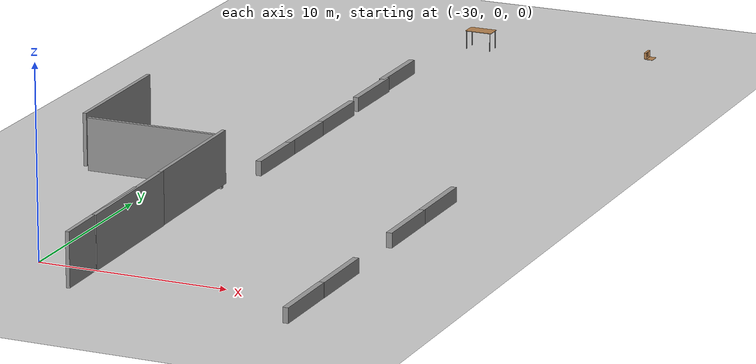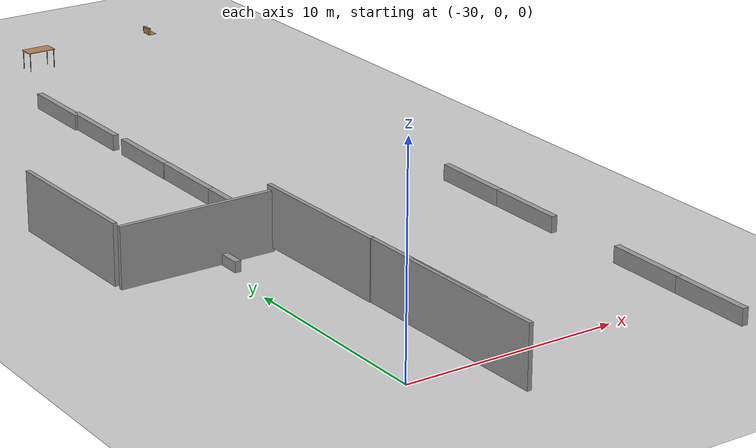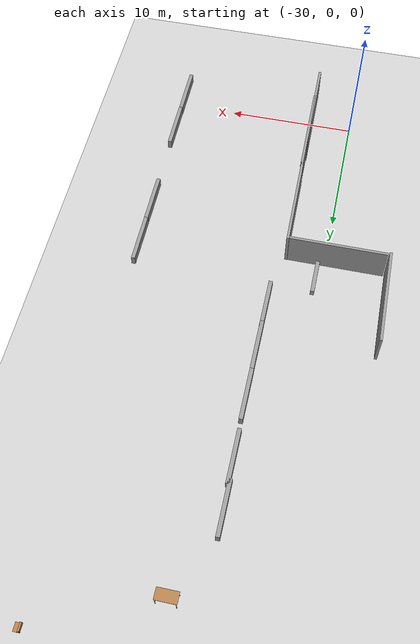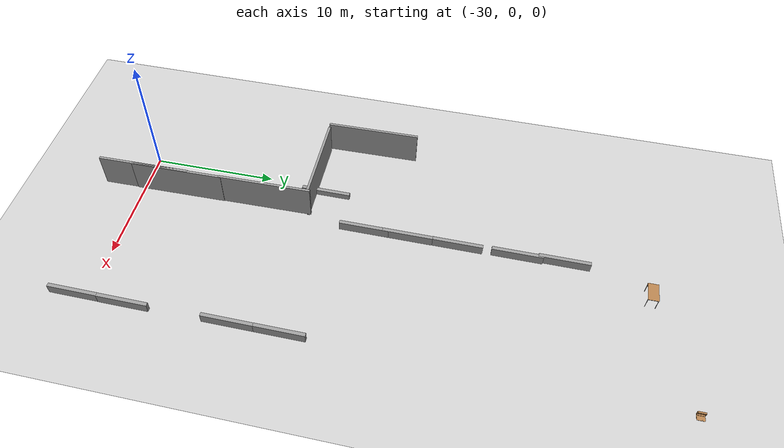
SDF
<sdf version="1.7">
 <world name="default">
  <model name="ground_plane">
   <static>1</static>
   <link name="link">
    <collision name="collision">
     <geometry><plane><normal>0 0 1</normal><size>100 100</size></plane></geometry>
     <surface><friction><ode><mu>100</mu><mu2>50</mu2></ode></friction></surface>
    </collision>
    <visual name="visual">
     <cast_shadows>0</cast_shadows>
     <geometry><plane><normal>0 0 1</normal><size>100 100</size></plane></geometry>
     <material>
      <script><uri>file://media/materials/scripts/gazebo.material</uri><name>Gazebo/Grey</name></script>
     </material>
    </visual>
   </link>
  </model>
  <model name="table">
   <static>1</static>
   <link name="link">
    <collision name="surface">
     <pose>0 0 1 0 -0 0</pose>
     <geometry><box><size>1.5 0.8 0.03</size></box></geometry>
     <surface><friction><ode><mu>0.6</mu><mu2>0.6</mu2></ode></friction></surface>
    </collision>
    <visual name="visual1">
     <pose>0 0 1 0 -0 0</pose>
     <geometry><box><size>1.5 0.8 0.03</size></box></geometry>
     <material>
      <script><uri>file://media/materials/scripts/gazebo.material</uri><name>Gazebo/Wood</name></script>
     </material>
    </visual>
    <collision name="front_left_leg">
     <pose>0.68 0.38 0.5 0 -0 0</pose>
     <geometry><cylinder><radius>0.02</radius><length>1</length></cylinder></geometry>
    </collision>
    <visual name="front_left_leg">
     <pose>0.68 0.38 0.5 0 -0 0</pose>
     <geometry><cylinder><radius>0.02</radius><length>1</length></cylinder></geometry>
     <material>
      <script><uri>file://media/materials/scripts/gazebo.material</uri><name>Gazebo/Grey</name></script>
     </material>
    </visual>
    <collision name="front_right_leg">
     <pose>0.68 -0.38 0.5 0 -0 0</pose>
     <geometry><cylinder><radius>0.02</radius><length>1</length></cylinder></geometry>
    </collision>
    <visual name="front_right_leg">
     <pose>0.68 -0.38 0.5 0 -0 0</pose>
     <geometry><cylinder><radius>0.02</radius><length>1</length></cylinder></geometry>
     <material>
      <script><uri>file://media/materials/scripts/gazebo.material</uri><name>Gazebo/Grey</name></script>
     </material>
    </visual>
    <collision name="back_right_leg">
     <pose>-0.68 -0.38 0.5 0 -0 0</pose>
     <geometry><cylinder><radius>0.02</radius><length>1</length></cylinder></geometry>
    </collision>
    <visual name="back_right_leg">
     <pose>-0.68 -0.38 0.5 0 -0 0</pose>
     <geometry><cylinder><radius>0.02</radius><length>1</length></cylinder></geometry>
     <material>
      <script><uri>file://media/materials/scripts/gazebo.material</uri><name>Gazebo/Grey</name></script>
     </material>
    </visual>
    <collision name="back_left_leg">
     <pose>-0.68 0.38 0.5 0 -0 0</pose>
     <geometry><cylinder><radius>0.02</radius><length>1</length></cylinder></geometry>
    </collision>
    <visual name="back_left_leg">
     <pose>-0.68 0.38 0.5 0 -0 0</pose>
     <geometry><cylinder><radius>0.02</radius><length>1</length></cylinder></geometry>
     <material>
      <script><uri>file://media/materials/scripts/gazebo.material</uri><name>Gazebo/Grey</name></script>
     </material>
    </visual>
   </link>
   <pose>-24.2186 40.8812 0.473539 0 -0 0</pose>
  </model>
  <model name="wooden_case">
   <link name="base">
    <pose>0 0 0.024 0 -0 0</pose>
    <inertial>
     <pose>-0.022184 0 0.171592 0 -0 0</pose>
     <mass>3.96264</mass>
     <inertia>
      <ixx>0.213536</ixx>
      <ixy>0</ixy>
      <ixz>0.000779377</ixz>
      <iyy>0.0708943</iyy>
      <iyz>0</iyz>
      <izz>0.154604</izz>
     </inertia>
    </inertial>
    <collision name="collision_back">
     <pose>-0.053975 0 0.1778 0 -0 0</pose>
     <geometry><box><size>0.01905 0.5461 0.3175</size></box></geometry>
     <surface>
      <contact>
       <poissons_ratio>0.347</poissons_ratio>
       <elastic_modulus>8.8e+09</elastic_modulus>
       <ode><kp>100000</kp><kd>100</kd><max_vel>100</max_vel><min_depth>0.001</min_depth></ode>
      </contact>
      <friction>
       <torsional>
        <coefficient>1</coefficient>
        <use_patch_radius>0</use_patch_radius>
        <surface_radius>0.01</surface_radius>
       </torsional>
      </friction>
     </surface>
    </collision>
    <visual name="visual_back">
     <pose>-0.053975 0 0.1778 0 -0 0</pose>
     <geometry><box><size>0.01905 0.5461 0.3175</size></box></geometry>
     <material>
      <script><uri>file://media/materials/scripts/gazebo.material</uri><name>Gazebo/Wood</name></script>
     </material>
    </visual>
    <collision name="collision_bottom">
     <pose>0 0 0.009525 0 -0 0</pose>
     <geometry><box><size>0.127 0.5842 0.01905</size></box></geometry>
     <surface>
      <contact>
       <poissons_ratio>0.347</poissons_ratio>
       <elastic_modulus>8.8e+09</elastic_modulus>
       <ode><kp>100000</kp><kd>100</kd><max_vel>100</max_vel><min_depth>0.001</min_depth></ode>
      </contact>
      <friction>
       <torsional>
        <coefficient>1</coefficient>
        <use_patch_radius>0</use_patch_radius>
        <surface_radius>0.01</surface_radius>
       </torsional>
      </friction>
     </surface>
    </collision>
    <visual name="visual_bottom">
     <pose>0 0 0.009525 0 -0 0</pose>
     <geometry><box><size>0.127 0.5842 0.01905</size></box></geometry>
     <material>
      <script><uri>file://media/materials/scripts/gazebo.material</uri><name>Gazebo/Wood</name></script>
     </material>
    </visual>
    <collision name="collision_top">
     <pose>0 0 0.346075 0 -0 0</pose>
     <geometry><box><size>0.127 0.5842 0.01905</size></box></geometry>
     <surface>
      <contact>
       <poissons_ratio>0.347</poissons_ratio>
       <elastic_modulus>8.8e+09</elastic_modulus>
       <ode><kp>100000</kp><kd>100</kd><max_vel>100</max_vel><min_depth>0.001</min_depth></ode>
      </contact>
      <friction>
       <torsional>
        <coefficient>1</coefficient>
        <use_patch_radius>0</use_patch_radius>
        <surface_radius>0.01</surface_radius>
       </torsional>
      </friction>
     </surface>
    </collision>
    <visual name="visual_top">
     <pose>0 0 0.346075 0 -0 0</pose>
     <geometry><box><size>0.127 0.5842 0.01905</size></box></geometry>
     <material>
      <script><uri>file://media/materials/scripts/gazebo.material</uri><name>Gazebo/Wood</name></script>
     </material>
    </visual>
    <collision name="collision_left">
     <pose>0 -0.282575 0.1778 0 -0 0</pose>
     <geometry><box><size>0.127 0.01905 0.3175</size></box></geometry>
     <surface>
      <contact>
       <poissons_ratio>0.347</poissons_ratio>
       <elastic_modulus>8.8e+09</elastic_modulus>
       <ode><kp>100000</kp><kd>100</kd><max_vel>100</max_vel><min_depth>0.001</min_depth></ode>
      </contact>
      <friction>
       <torsional>
        <coefficient>1</coefficient>
        <use_patch_radius>0</use_patch_radius>
        <surface_radius>0.01</surface_radius>
       </torsional>
      </friction>
     </surface>
    </collision>
    <visual name="visual_left">
     <pose>0 -0.282575 0.1778 0 -0 0</pose>
     <geometry><box><size>0.127 0.01905 0.3175</size></box></geometry>
     <material>
      <script><uri>file://media/materials/scripts/gazebo.material</uri><name>Gazebo/Wood</name></script>
     </material>
    </visual>
    <collision name="collision_right">
     <pose>0 0.282575 0.1778 0 -0 0</pose>
     <geometry><box><size>0.127 0.01905 0.3175</size></box></geometry>
     <surface>
      <contact>
       <poissons_ratio>0.347</poissons_ratio>
       <elastic_modulus>8.8e+09</elastic_modulus>
       <ode><kp>100000</kp><kd>100</kd><max_vel>100</max_vel><min_depth>0.001</min_depth></ode>
      </contact>
      <friction>
       <torsional>
        <coefficient>1</coefficient>
        <use_patch_radius>0</use_patch_radius>
        <surface_radius>0.01</surface_radius>
       </torsional>
      </friction>
     </surface>
    </collision>
    <visual name="visual_right">
     <pose>0 0.282575 0.1778 0 -0 0</pose>
     <geometry><box><size>0.127 0.01905 0.3175</size></box></geometry>
     <material>
      <script><uri>file://media/materials/scripts/gazebo.material</uri><name>Gazebo/Wood</name></script>
     </material>
    </visual>
    <collision name="collision_block_left">
     <pose>0.0095 -0.2151 -0.012 0 -0 0</pose>
     <geometry><box><size>0.108 0.05 0.024</size></box></geometry>
     <surface>
      <contact>
       <poissons_ratio>0.347</poissons_ratio>
       <elastic_modulus>8.8e+09</elastic_modulus>
       <ode><kp>100000</kp><kd>100</kd><max_vel>100</max_vel><min_depth>0.001</min_depth></ode>
      </contact>
      <friction>
       <torsional>
        <coefficient>1</coefficient>
        <use_patch_radius>0</use_patch_radius>
        <surface_radius>0.01</surface_radius>
       </torsional>
      </friction>
     </surface>
    </collision>
    <visual name="visual_block_left">
     <pose>0.0095 -0.2151 -0.012 0 -0 0</pose>
     <geometry><box><size>0.108 0.05 0.024</size></box></geometry>
     <material>
      <script><uri>file://media/materials/scripts/gazebo.material</uri><name>Gazebo/Wood</name></script>
     </material>
    </visual>
    <collision name="collision_block_right">
     <pose>0.0095 0.2151 -0.012 0 -0 0</pose>
     <geometry><box><size>0.108 0.05 0.024</size></box></geometry>
     <surface>
      <contact>
       <poissons_ratio>0.347</poissons_ratio>
       <elastic_modulus>8.8e+09</elastic_modulus>
       <ode><kp>100000</kp><kd>100</kd><max_vel>100</max_vel><min_depth>0.001</min_depth></ode>
      </contact>
      <friction>
       <torsional>
        <coefficient>1</coefficient>
        <use_patch_radius>0</use_patch_radius>
        <surface_radius>0.01</surface_radius>
       </torsional>
      </friction>
     </surface>
    </collision>
    <visual name="visual_block_right">
     <pose>0.0095 0.2151 -0.012 0 -0 0</pose>
     <geometry><box><size>0.108 0.05 0.024</size></box></geometry>
     <material>
      <script><uri>file://media/materials/scripts/gazebo.material</uri><name>Gazebo/Wood</name></script>
     </material>
    </visual>
   </link>
   <link name="lid">
    <pose>0.243775 0 0.009525 0 -0 0</pose>
    <inertial>
     <mass>1.97874</mass>
     <inertia>
      <ixx>0.0563367</ixx>
      <ixy>0</ixy>
      <ixz>0</ixz>
      <iyy>0.020911</iyy>
      <iyz>0</iyz>
      <izz>0.0771281</izz>
     </inertia>
    </inertial>
    <collision name="collision">
     <geometry><box><size>0.3556 0.5842 0.01905</size></box></geometry>
     <surface>
      <contact>
       <poissons_ratio>0.347</poissons_ratio>
       <elastic_modulus>8.8e+09</elastic_modulus>
       <ode><kp>100000</kp><kd>100</kd><max_vel>100</max_vel><min_depth>0.001</min_depth></ode>
      </contact>
      <friction>
       <torsional>
        <coefficient>1</coefficient>
        <use_patch_radius>0</use_patch_radius>
        <surface_radius>0.01</surface_radius>
       </torsional>
      </friction>
     </surface>
    </collision>
    <visual name="visual">
     <geometry><box><size>0.3556 0.5842 0.01905</size></box></geometry>
     <material>
      <script><uri>file://media/materials/scripts/gazebo.material</uri><name>Gazebo/Wood</name></script>
     </material>
    </visual>
    <visual name="tee_nut_1">
     <pose>0.122 -0.216 0 0 -0 0</pose>
     <geometry><cylinder><radius>0.00635</radius><length>0.0192405</length></cylinder></geometry>
     <material>
      <script><uri>file://media/materials/scripts/gazebo.material</uri><name>Gazebo/Grey</name></script>
     </material>
    </visual>
    <visual name="tee_nut_2">
     <pose>0.122 -0.088 0 0 -0 0</pose>
     <geometry><cylinder><radius>0.00635</radius><length>0.0192405</length></cylinder></geometry>
     <material>
      <script><uri>file://media/materials/scripts/gazebo.material</uri><name>Gazebo/Grey</name></script>
     </material>
    </visual>
    <visual name="tee_nut_3">
     <pose>0.122 0.088 0 0 -0 0</pose>
     <geometry><cylinder><radius>0.00635</radius><length>0.0192405</length></cylinder></geometry>
     <material>
      <script><uri>file://media/materials/scripts/gazebo.material</uri><name>Gazebo/Grey</name></script>
     </material>
    </visual>
    <visual name="tee_nut_4">
     <pose>0.122 0.216 0 0 -0 0</pose>
     <geometry><cylinder><radius>0.00635</radius><length>0.0192405</length></cylinder></geometry>
     <material>
      <script><uri>file://media/materials/scripts/gazebo.material</uri><name>Gazebo/Grey</name></script>
     </material>
    </visual>
   </link>
   <joint name="lid_hinge" type="revolute">
    <pose>-0.1778 0 0.01905 0 -0 0</pose>
    <parent>base</parent>
    <child>lid</child>
    <axis>
     <xyz>0 1 0</xyz>
     <limit><upper>0.523599</upper><lower>-1.5708</lower></limit>
     <dynamics><spring_reference>0</spring_reference><spring_stiffness>0</spring_stiffness></dynamics>
    </axis>
   </joint>
   <pose>-15.8267 44.2683 -0.001057 0 -0.000429 0</pose>
  </model>
  <model name="grey_wall_1_clone_clone">
   <static>1</static>
   <link name="link">
    <pose>0 0 1.4 0 -0 0</pose>
    <collision name="collision"><geometry><box><size>7.5 0.2 2.8</size></box></geometry></collision>
    <visual name="visual">
     <cast_shadows>0</cast_shadows>
     <geometry><box><size>7.5 0.2 2.8</size></box></geometry>
     <material>
      <script>
       <uri>model://grey_wall/materials/scripts</uri>
       <uri>model://grey_wall/materials/textures</uri>
       <name>vrc/grey_wall</name>
      </script>
     </material>
    </visual>
   </link>
   <pose>-26.9144 10.5164 0.19567 0 0 -1.55567</pose>
  </model>
  <model name="grey_wall_1_clone_clone_0">
   <static>1</static>
   <link name="link">
    <pose>0 0 1.4 0 -0 0</pose>
    <collision name="collision"><geometry><box><size>7.5 0.2 2.8</size></box></geometry></collision>
    <visual name="visual">
     <cast_shadows>0</cast_shadows>
     <geometry><box><size>7.5 0.2 2.8</size></box></geometry>
     <material>
      <script>
       <uri>model://grey_wall/materials/scripts</uri>
       <uri>model://grey_wall/materials/textures</uri>
       <name>vrc/grey_wall</name>
      </script>
     </material>
    </visual>
   </link>
   <pose>-26.7681 3.21616 0.19567 0 0 -1.55567</pose>
  </model>
  <model name="grey_wall_1_clone_clone_1">
   <static>1</static>
   <link name="link">
    <pose>0 0 1.4 0 -0 0</pose>
    <collision name="collision"><geometry><box><size>7.5 0.2 2.8</size></box></geometry></collision>
    <visual name="visual">
     <cast_shadows>0</cast_shadows>
     <geometry><box><size>7.5 0.2 2.8</size></box></geometry>
     <material>
      <script>
       <uri>model://grey_wall/materials/scripts</uri>
       <uri>model://grey_wall/materials/textures</uri>
       <name>vrc/grey_wall</name>
      </script>
     </material>
    </visual>
   </link>
   <pose>-26.7715 0.421848 0.19567 0 0 -1.55567</pose>
  </model>
  <model name="grey_wall_0_clone_0_clone">
   <static>1</static>
   <link name="link">
    <pose>0 0 1.4 0 -0 0</pose>
    <collision name="collision"><geometry><box><size>7.5 0.2 2.8</size></box></geometry></collision>
    <visual name="visual">
     <cast_shadows>0</cast_shadows>
     <geometry><box><size>7.5 0.2 2.8</size></box></geometry>
     <material>
      <script>
       <uri>model://grey_wall/materials/scripts</uri>
       <uri>model://grey_wall/materials/textures</uri>
       <name>vrc/grey_wall</name>
      </script>
     </material>
    </visual>
   </link>
   <pose>-30.6989 14.0157 0 0 -0 0</pose>
  </model>
  <model name="grey_wall_1_clone_clone_1_clone">
   <static>1</static>
   <link name="link">
    <pose>0 0 1.4 0 -0 0</pose>
    <collision name="collision"><geometry><box><size>7.5 0.2 2.8</size></box></geometry></collision>
    <visual name="visual">
     <cast_shadows>0</cast_shadows>
     <geometry><box><size>7.5 0.2 2.8</size></box></geometry>
     <material>
      <script>
       <uri>model://grey_wall/materials/scripts</uri>
       <uri>model://grey_wall/materials/textures</uri>
       <name>vrc/grey_wall</name>
      </script>
     </material>
    </visual>
   </link>
   <pose>-34.6805 17.7285 0.19567 0 0 -1.55567</pose>
  </model>
  <model name="conveyor_fill_taller_clone_8">
   <link name="link">
    <inertial>
     <mass>1</mass>
     <inertia>
      <ixx>0.166667</ixx>
      <ixy>0</ixy>
      <ixz>0</ixz>
      <iyy>0.166667</iyy>
      <iyz>0</iyz>
      <izz>0.166667</izz>
     </inertia>
    </inertial>
    <pose>0 0 -0.277043 0 -0 0</pose>
    <visual name="visual">
     <geometry><box><size>0.3 4 1</size></box></geometry>
     <material>
      <script><name>Gazebo/Grey</name><uri>file://media/materials/scripts/gazebo.material</uri></script>
      <shader type="pixel"><normal_map>__default__</normal_map></shader>
      <ambient>0.3 0.3 0.3 1</ambient>
      <diffuse>0.7 0.7 0.7 1</diffuse>
      <specular>0.01 0.01 0.01 1</specular>
      <emissive>0 0 0 1</emissive>
     </material>
    </visual>
    <collision name="collision">
     <geometry><box><size>0.3 4 1</size></box></geometry>
     <surface>
      <friction>
       <ode><mu>1</mu><mu2>1</mu2><fdir1>0 0 0</fdir1><slip1>0</slip1><slip2>0</slip2></ode>
       <torsional>
        <coefficient>1</coefficient>
        <patch_radius>0</patch_radius>
        <surface_radius>0</surface_radius>
        <use_patch_radius>1</use_patch_radius>
        <ode><slip>0</slip></ode>
       </torsional>
      </friction>
      <bounce><restitution_coefficient>0</restitution_coefficient><threshold>1e+06</threshold></bounce>
      <contact>
       <collide_without_contact>0</collide_without_contact>
       <collide_without_contact_bitmask>1</collide_without_contact_bitmask>
       <collide_bitmask>1</collide_bitmask>
       <ode>
        <soft_cfm>0</soft_cfm>
        <soft_erp>0.2</soft_erp>
        <kp>1e+13</kp>
        <kd>1</kd>
        <max_vel>0.01</max_vel>
        <min_depth>0</min_depth>
       </ode>
       <bullet>
        <split_impulse>1</split_impulse>
        <split_impulse_penetration_threshold>-0.01</split_impulse_penetration_threshold>
        <soft_cfm>0</soft_cfm>
        <soft_erp>0.2</soft_erp>
        <kp>1e+13</kp>
        <kd>1</kd>
       </bullet>
      </contact>
     </surface>
    </collision>
   </link>
   <static>0</static>
   <pose>-15.5896 14.8985 0.5 0 0 -0.00195</pose>
  </model>
  <model name="conveyor_fill_taller_clone_9">
   <link name="link">
    <inertial>
     <mass>1</mass>
     <inertia>
      <ixx>0.166667</ixx>
      <ixy>0</ixy>
      <ixz>0</ixz>
      <iyy>0.166667</iyy>
      <iyz>0</iyz>
      <izz>0.166667</izz>
     </inertia>
    </inertial>
    <pose>0 0 -0.277043 0 -0 0</pose>
    <visual name="visual">
     <geometry><box><size>0.3 4 1</size></box></geometry>
     <material>
      <script><name>Gazebo/Grey</name><uri>file://media/materials/scripts/gazebo.material</uri></script>
      <shader type="pixel"><normal_map>__default__</normal_map></shader>
      <ambient>0.3 0.3 0.3 1</ambient>
      <diffuse>0.7 0.7 0.7 1</diffuse>
      <specular>0.01 0.01 0.01 1</specular>
      <emissive>0 0 0 1</emissive>
     </material>
    </visual>
    <collision name="collision">
     <geometry><box><size>0.3 4 1</size></box></geometry>
     <surface>
      <friction>
       <ode><mu>1</mu><mu2>1</mu2><fdir1>0 0 0</fdir1><slip1>0</slip1><slip2>0</slip2></ode>
       <torsional>
        <coefficient>1</coefficient>
        <patch_radius>0</patch_radius>
        <surface_radius>0</surface_radius>
        <use_patch_radius>1</use_patch_radius>
        <ode><slip>0</slip></ode>
       </torsional>
      </friction>
      <bounce><restitution_coefficient>0</restitution_coefficient><threshold>1e+06</threshold></bounce>
      <contact>
       <collide_without_contact>0</collide_without_contact>
       <collide_without_contact_bitmask>1</collide_without_contact_bitmask>
       <collide_bitmask>1</collide_bitmask>
       <ode>
        <soft_cfm>0</soft_cfm>
        <soft_erp>0.2</soft_erp>
        <kp>1e+13</kp>
        <kd>1</kd>
        <max_vel>0.01</max_vel>
        <min_depth>0</min_depth>
       </ode>
       <bullet>
        <split_impulse>1</split_impulse>
        <split_impulse_penetration_threshold>-0.01</split_impulse_penetration_threshold>
        <soft_cfm>0</soft_cfm>
        <soft_erp>0.2</soft_erp>
        <kp>1e+13</kp>
        <kd>1</kd>
       </bullet>
      </contact>
     </surface>
    </collision>
   </link>
   <static>0</static>
   <pose>-15.5919 10.9686 0.5 0 0 -0.00195</pose>
  </model>
  <model name="conveyor_fill_taller_clone_11">
   <link name="link">
    <inertial>
     <mass>1</mass>
     <inertia>
      <ixx>0.166667</ixx>
      <ixy>0</ixy>
      <ixz>0</ixz>
      <iyy>0.166667</iyy>
      <iyz>0</iyz>
      <izz>0.166667</izz>
     </inertia>
    </inertial>
    <pose>0 0 -0.277043 0 -0 0</pose>
    <visual name="visual">
     <geometry><box><size>0.3 4 1</size></box></geometry>
     <material>
      <script><name>Gazebo/Grey</name><uri>file://media/materials/scripts/gazebo.material</uri></script>
      <shader type="pixel"><normal_map>__default__</normal_map></shader>
      <ambient>0.3 0.3 0.3 1</ambient>
      <diffuse>0.7 0.7 0.7 1</diffuse>
      <specular>0.01 0.01 0.01 1</specular>
      <emissive>0 0 0 1</emissive>
     </material>
    </visual>
    <collision name="collision">
     <geometry><box><size>0.3 4 1</size></box></geometry>
     <surface>
      <friction>
       <ode><mu>1</mu><mu2>1</mu2><fdir1>0 0 0</fdir1><slip1>0</slip1><slip2>0</slip2></ode>
       <torsional>
        <coefficient>1</coefficient>
        <patch_radius>0</patch_radius>
        <surface_radius>0</surface_radius>
        <use_patch_radius>1</use_patch_radius>
        <ode><slip>0</slip></ode>
       </torsional>
      </friction>
      <bounce><restitution_coefficient>0</restitution_coefficient><threshold>1e+06</threshold></bounce>
      <contact>
       <collide_without_contact>0</collide_without_contact>
       <collide_without_contact_bitmask>1</collide_without_contact_bitmask>
       <collide_bitmask>1</collide_bitmask>
       <ode>
        <soft_cfm>0</soft_cfm>
        <soft_erp>0.2</soft_erp>
        <kp>1e+13</kp>
        <kd>1</kd>
        <max_vel>0.01</max_vel>
        <min_depth>0</min_depth>
       </ode>
       <bullet>
        <split_impulse>1</split_impulse>
        <split_impulse_penetration_threshold>-0.01</split_impulse_penetration_threshold>
        <soft_cfm>0</soft_cfm>
        <soft_erp>0.2</soft_erp>
        <kp>1e+13</kp>
        <kd>1</kd>
       </bullet>
      </contact>
     </surface>
    </collision>
   </link>
   <static>0</static>
   <pose>-15.5201 2.88334 0.5 0 0 -0.00195</pose>
  </model>
  <model name="conveyor_fill_taller_clone_12">
   <link name="link">
    <inertial>
     <mass>1</mass>
     <inertia>
      <ixx>0.166667</ixx>
      <ixy>0</ixy>
      <ixz>0</ixz>
      <iyy>0.166667</iyy>
      <iyz>0</iyz>
      <izz>0.166667</izz>
     </inertia>
    </inertial>
    <pose>0 0 -0.277043 0 -0 0</pose>
    <visual name="visual">
     <geometry><box><size>0.3 4 1</size></box></geometry>
     <material>
      <script><name>Gazebo/Grey</name><uri>file://media/materials/scripts/gazebo.material</uri></script>
      <shader type="pixel"><normal_map>__default__</normal_map></shader>
      <ambient>0.3 0.3 0.3 1</ambient>
      <diffuse>0.7 0.7 0.7 1</diffuse>
      <specular>0.01 0.01 0.01 1</specular>
      <emissive>0 0 0 1</emissive>
     </material>
    </visual>
    <collision name="collision">
     <geometry><box><size>0.3 4 1</size></box></geometry>
     <surface>
      <friction>
       <ode><mu>1</mu><mu2>1</mu2><fdir1>0 0 0</fdir1><slip1>0</slip1><slip2>0</slip2></ode>
       <torsional>
        <coefficient>1</coefficient>
        <patch_radius>0</patch_radius>
        <surface_radius>0</surface_radius>
        <use_patch_radius>1</use_patch_radius>
        <ode><slip>0</slip></ode>
       </torsional>
      </friction>
      <bounce><restitution_coefficient>0</restitution_coefficient><threshold>1e+06</threshold></bounce>
      <contact>
       <collide_without_contact>0</collide_without_contact>
       <collide_without_contact_bitmask>1</collide_without_contact_bitmask>
       <collide_bitmask>1</collide_bitmask>
       <ode>
        <soft_cfm>0</soft_cfm>
        <soft_erp>0.2</soft_erp>
        <kp>1e+13</kp>
        <kd>1</kd>
        <max_vel>0.01</max_vel>
        <min_depth>0</min_depth>
       </ode>
       <bullet>
        <split_impulse>1</split_impulse>
        <split_impulse_penetration_threshold>-0.01</split_impulse_penetration_threshold>
        <soft_cfm>0</soft_cfm>
        <soft_erp>0.2</soft_erp>
        <kp>1e+13</kp>
        <kd>1</kd>
       </bullet>
      </contact>
     </surface>
    </collision>
   </link>
   <static>0</static>
   <pose>-15.5404 -1.05115 0.5 0 0 -0.00195</pose>
  </model>
  <model name="conveyor_fill_taller_clone_13">
   <link name="link">
    <inertial>
     <mass>1</mass>
     <inertia>
      <ixx>0.166667</ixx>
      <ixy>0</ixy>
      <ixz>0</ixz>
      <iyy>0.166667</iyy>
      <iyz>0</iyz>
      <izz>0.166667</izz>
     </inertia>
    </inertial>
    <pose>0 0 -0.277043 0 -0 0</pose>
    <visual name="visual">
     <geometry><box><size>0.3 4 1</size></box></geometry>
     <material>
      <script><name>Gazebo/Grey</name><uri>file://media/materials/scripts/gazebo.material</uri></script>
      <shader type="pixel"><normal_map>__default__</normal_map></shader>
      <ambient>0.3 0.3 0.3 1</ambient>
      <diffuse>0.7 0.7 0.7 1</diffuse>
      <specular>0.01 0.01 0.01 1</specular>
      <emissive>0 0 0 1</emissive>
     </material>
    </visual>
    <collision name="collision">
     <geometry><box><size>0.3 4 1</size></box></geometry>
     <surface>
      <friction>
       <ode><mu>1</mu><mu2>1</mu2><fdir1>0 0 0</fdir1><slip1>0</slip1><slip2>0</slip2></ode>
       <torsional>
        <coefficient>1</coefficient>
        <patch_radius>0</patch_radius>
        <surface_radius>0</surface_radius>
        <use_patch_radius>1</use_patch_radius>
        <ode><slip>0</slip></ode>
       </torsional>
      </friction>
      <bounce><restitution_coefficient>0</restitution_coefficient><threshold>1e+06</threshold></bounce>
      <contact>
       <collide_without_contact>0</collide_without_contact>
       <collide_without_contact_bitmask>1</collide_without_contact_bitmask>
       <collide_bitmask>1</collide_bitmask>
       <ode>
        <soft_cfm>0</soft_cfm>
        <soft_erp>0.2</soft_erp>
        <kp>1e+13</kp>
        <kd>1</kd>
        <max_vel>0.01</max_vel>
        <min_depth>0</min_depth>
       </ode>
       <bullet>
        <split_impulse>1</split_impulse>
        <split_impulse_penetration_threshold>-0.01</split_impulse_penetration_threshold>
        <soft_cfm>0</soft_cfm>
        <soft_erp>0.2</soft_erp>
        <kp>1e+13</kp>
        <kd>1</kd>
       </bullet>
      </contact>
     </surface>
    </collision>
   </link>
   <static>0</static>
   <pose>-26.2536 18.7985 0.5 0 0 -0.00195</pose>
  </model>
  <model name="conveyor_fill_taller_clone_14">
   <link name="link">
    <inertial>
     <mass>1</mass>
     <inertia>
      <ixx>0.166667</ixx>
      <ixy>0</ixy>
      <ixz>0</ixz>
      <iyy>0.166667</iyy>
      <iyz>0</iyz>
      <izz>0.166667</izz>
     </inertia>
    </inertial>
    <pose>0 0 -0.277043 0 -0 0</pose>
    <visual name="visual">
     <geometry><box><size>0.3 4 1</size></box></geometry>
     <material>
      <script><name>Gazebo/Grey</name><uri>file://media/materials/scripts/gazebo.material</uri></script>
      <shader type="pixel"><normal_map>__default__</normal_map></shader>
      <ambient>0.3 0.3 0.3 1</ambient>
      <diffuse>0.7 0.7 0.7 1</diffuse>
      <specular>0.01 0.01 0.01 1</specular>
      <emissive>0 0 0 1</emissive>
     </material>
    </visual>
    <collision name="collision">
     <geometry><box><size>0.3 4 1</size></box></geometry>
     <surface>
      <friction>
       <ode><mu>1</mu><mu2>1</mu2><fdir1>0 0 0</fdir1><slip1>0</slip1><slip2>0</slip2></ode>
       <torsional>
        <coefficient>1</coefficient>
        <patch_radius>0</patch_radius>
        <surface_radius>0</surface_radius>
        <use_patch_radius>1</use_patch_radius>
        <ode><slip>0</slip></ode>
       </torsional>
      </friction>
      <bounce><restitution_coefficient>0</restitution_coefficient><threshold>1e+06</threshold></bounce>
      <contact>
       <collide_without_contact>0</collide_without_contact>
       <collide_without_contact_bitmask>1</collide_without_contact_bitmask>
       <collide_bitmask>1</collide_bitmask>
       <ode>
        <soft_cfm>0</soft_cfm>
        <soft_erp>0.2</soft_erp>
        <kp>1e+13</kp>
        <kd>1</kd>
        <max_vel>0.01</max_vel>
        <min_depth>0</min_depth>
       </ode>
       <bullet>
        <split_impulse>1</split_impulse>
        <split_impulse_penetration_threshold>-0.01</split_impulse_penetration_threshold>
        <soft_cfm>0</soft_cfm>
        <soft_erp>0.2</soft_erp>
        <kp>1e+13</kp>
        <kd>1</kd>
       </bullet>
      </contact>
     </surface>
    </collision>
   </link>
   <static>0</static>
   <pose>-26.2532 22.3136 0.5 0 0 -0.00195</pose>
  </model>
  <model name="conveyor_fill_taller_clone_15">
   <link name="link">
    <inertial>
     <mass>1</mass>
     <inertia>
      <ixx>0.166667</ixx>
      <ixy>0</ixy>
      <ixz>0</ixz>
      <iyy>0.166667</iyy>
      <iyz>0</iyz>
      <izz>0.166667</izz>
     </inertia>
    </inertial>
    <pose>0 0 -0.277043 0 -0 0</pose>
    <visual name="visual">
     <geometry><box><size>0.3 4 1</size></box></geometry>
     <material>
      <script><name>Gazebo/Grey</name><uri>file://media/materials/scripts/gazebo.material</uri></script>
      <shader type="pixel"><normal_map>__default__</normal_map></shader>
      <ambient>0.3 0.3 0.3 1</ambient>
      <diffuse>0.7 0.7 0.7 1</diffuse>
      <specular>0.01 0.01 0.01 1</specular>
      <emissive>0 0 0 1</emissive>
     </material>
    </visual>
    <collision name="collision">
     <geometry><box><size>0.3 4 1</size></box></geometry>
     <surface>
      <friction>
       <ode><mu>1</mu><mu2>1</mu2><fdir1>0 0 0</fdir1><slip1>0</slip1><slip2>0</slip2></ode>
       <torsional>
        <coefficient>1</coefficient>
        <patch_radius>0</patch_radius>
        <surface_radius>0</surface_radius>
        <use_patch_radius>1</use_patch_radius>
        <ode><slip>0</slip></ode>
       </torsional>
      </friction>
      <bounce><restitution_coefficient>0</restitution_coefficient><threshold>1e+06</threshold></bounce>
      <contact>
       <collide_without_contact>0</collide_without_contact>
       <collide_without_contact_bitmask>1</collide_without_contact_bitmask>
       <collide_bitmask>1</collide_bitmask>
       <ode>
        <soft_cfm>0</soft_cfm>
        <soft_erp>0.2</soft_erp>
        <kp>1e+13</kp>
        <kd>1</kd>
        <max_vel>0.01</max_vel>
        <min_depth>0</min_depth>
       </ode>
       <bullet>
        <split_impulse>1</split_impulse>
        <split_impulse_penetration_threshold>-0.01</split_impulse_penetration_threshold>
        <soft_cfm>0</soft_cfm>
        <soft_erp>0.2</soft_erp>
        <kp>1e+13</kp>
        <kd>1</kd>
       </bullet>
      </contact>
     </surface>
    </collision>
   </link>
   <static>0</static>
   <pose>-26.2583 26.2708 0.5 0 0 -0.00195</pose>
  </model>
  <model name="conveyor_fill_taller_clone_16">
   <link name="link">
    <inertial>
     <mass>1</mass>
     <inertia>
      <ixx>0.166667</ixx>
      <ixy>0</ixy>
      <ixz>0</ixz>
      <iyy>0.166667</iyy>
      <iyz>0</iyz>
      <izz>0.166667</izz>
     </inertia>
    </inertial>
    <pose>0 0 -0.277043 0 -0 0</pose>
    <visual name="visual">
     <geometry><box><size>0.3 4 1</size></box></geometry>
     <material>
      <script><name>Gazebo/Grey</name><uri>file://media/materials/scripts/gazebo.material</uri></script>
      <shader type="pixel"><normal_map>__default__</normal_map></shader>
      <ambient>0.3 0.3 0.3 1</ambient>
      <diffuse>0.7 0.7 0.7 1</diffuse>
      <specular>0.01 0.01 0.01 1</specular>
      <emissive>0 0 0 1</emissive>
     </material>
    </visual>
    <collision name="collision">
     <geometry><box><size>0.3 4 1</size></box></geometry>
     <surface>
      <friction>
       <ode><mu>1</mu><mu2>1</mu2><fdir1>0 0 0</fdir1><slip1>0</slip1><slip2>0</slip2></ode>
       <torsional>
        <coefficient>1</coefficient>
        <patch_radius>0</patch_radius>
        <surface_radius>0</surface_radius>
        <use_patch_radius>1</use_patch_radius>
        <ode><slip>0</slip></ode>
       </torsional>
      </friction>
      <bounce><restitution_coefficient>0</restitution_coefficient><threshold>1e+06</threshold></bounce>
      <contact>
       <collide_without_contact>0</collide_without_contact>
       <collide_without_contact_bitmask>1</collide_without_contact_bitmask>
       <collide_bitmask>1</collide_bitmask>
       <ode>
        <soft_cfm>0</soft_cfm>
        <soft_erp>0.2</soft_erp>
        <kp>1e+13</kp>
        <kd>1</kd>
        <max_vel>0.01</max_vel>
        <min_depth>0</min_depth>
       </ode>
       <bullet>
        <split_impulse>1</split_impulse>
        <split_impulse_penetration_threshold>-0.01</split_impulse_penetration_threshold>
        <soft_cfm>0</soft_cfm>
        <soft_erp>0.2</soft_erp>
        <kp>1e+13</kp>
        <kd>1</kd>
       </bullet>
      </contact>
     </surface>
    </collision>
   </link>
   <static>0</static>
   <pose>-26.3188 30.9434 0.5 0 0 -0.00195</pose>
  </model>
  <model name="conveyor_fill_taller_clone_17">
   <link name="link">
    <inertial>
     <mass>1</mass>
     <inertia>
      <ixx>0.166667</ixx>
      <ixy>0</ixy>
      <ixz>0</ixz>
      <iyy>0.166667</iyy>
      <iyz>0</iyz>
      <izz>0.166667</izz>
     </inertia>
    </inertial>
    <pose>0 0 -0.277043 0 -0 0</pose>
    <visual name="visual">
     <geometry><box><size>0.3 4 1</size></box></geometry>
     <material>
      <script><name>Gazebo/Grey</name><uri>file://media/materials/scripts/gazebo.material</uri></script>
      <shader type="pixel"><normal_map>__default__</normal_map></shader>
      <ambient>0.3 0.3 0.3 1</ambient>
      <diffuse>0.7 0.7 0.7 1</diffuse>
      <specular>0.01 0.01 0.01 1</specular>
      <emissive>0 0 0 1</emissive>
     </material>
    </visual>
    <collision name="collision">
     <geometry><box><size>0.3 4 1</size></box></geometry>
     <surface>
      <friction>
       <ode><mu>1</mu><mu2>1</mu2><fdir1>0 0 0</fdir1><slip1>0</slip1><slip2>0</slip2></ode>
       <torsional>
        <coefficient>1</coefficient>
        <patch_radius>0</patch_radius>
        <surface_radius>0</surface_radius>
        <use_patch_radius>1</use_patch_radius>
        <ode><slip>0</slip></ode>
       </torsional>
      </friction>
      <bounce><restitution_coefficient>0</restitution_coefficient><threshold>1e+06</threshold></bounce>
      <contact>
       <collide_without_contact>0</collide_without_contact>
       <collide_without_contact_bitmask>1</collide_without_contact_bitmask>
       <collide_bitmask>1</collide_bitmask>
       <ode>
        <soft_cfm>0</soft_cfm>
        <soft_erp>0.2</soft_erp>
        <kp>1e+13</kp>
        <kd>1</kd>
        <max_vel>0.01</max_vel>
        <min_depth>0</min_depth>
       </ode>
       <bullet>
        <split_impulse>1</split_impulse>
        <split_impulse_penetration_threshold>-0.01</split_impulse_penetration_threshold>
        <soft_cfm>0</soft_cfm>
        <soft_erp>0.2</soft_erp>
        <kp>1e+13</kp>
        <kd>1</kd>
       </bullet>
      </contact>
     </surface>
    </collision>
   </link>
   <static>0</static>
   <pose>-26.4267 34.5451 0.5 0 0 -0.00195</pose>
  </model>
  <model name="conveyor_fill_clone">
   <link name="link">
    <inertial>
     <mass>1</mass>
     <inertia>
      <ixx>0.166667</ixx>
      <ixy>0</ixy>
      <ixz>0</ixz>
      <iyy>0.166667</iyy>
      <iyz>0</iyz>
      <izz>0.166667</izz>
     </inertia>
    </inertial>
    <pose>0 0 -0.277043 0 -0 0</pose>
    <visual name="visual">
     <geometry><box><size>0.3 4 0.5</size></box></geometry>
     <material>
      <script><name>Gazebo/Grey</name><uri>file://media/materials/scripts/gazebo.material</uri></script>
      <shader type="pixel"><normal_map>__default__</normal_map></shader>
      <ambient>0.3 0.3 0.3 1</ambient>
      <diffuse>0.7 0.7 0.7 1</diffuse>
      <specular>0.01 0.01 0.01 1</specular>
      <emissive>0 0 0 1</emissive>
     </material>
    </visual>
    <collision name="collision">
     <geometry><box><size>0.3 4 0.5</size></box></geometry>
     <surface>
      <friction>
       <ode><mu>1</mu><mu2>1</mu2><fdir1>0 0 0</fdir1><slip1>0</slip1><slip2>0</slip2></ode>
       <torsional>
        <coefficient>1</coefficient>
        <patch_radius>0</patch_radius>
        <surface_radius>0</surface_radius>
        <use_patch_radius>1</use_patch_radius>
        <ode><slip>0</slip></ode>
       </torsional>
      </friction>
      <bounce><restitution_coefficient>0</restitution_coefficient><threshold>1e+06</threshold></bounce>
      <contact>
       <collide_without_contact>0</collide_without_contact>
       <collide_without_contact_bitmask>1</collide_without_contact_bitmask>
       <collide_bitmask>1</collide_bitmask>
       <ode>
        <soft_cfm>0</soft_cfm>
        <soft_erp>0.2</soft_erp>
        <kp>1e+13</kp>
        <kd>1</kd>
        <max_vel>0.01</max_vel>
        <min_depth>0</min_depth>
       </ode>
       <bullet>
        <split_impulse>1</split_impulse>
        <split_impulse_penetration_threshold>-0.01</split_impulse_penetration_threshold>
        <soft_cfm>0</soft_cfm>
        <soft_erp>0.2</soft_erp>
        <kp>1e+13</kp>
        <kd>1</kd>
       </bullet>
      </contact>
     </surface>
    </collision>
   </link>
   <static>0</static>
   <pose>-29.4354 14.8809 0.5 0 0 -0.00195</pose>
  </model>
 </world>
</sdf>
